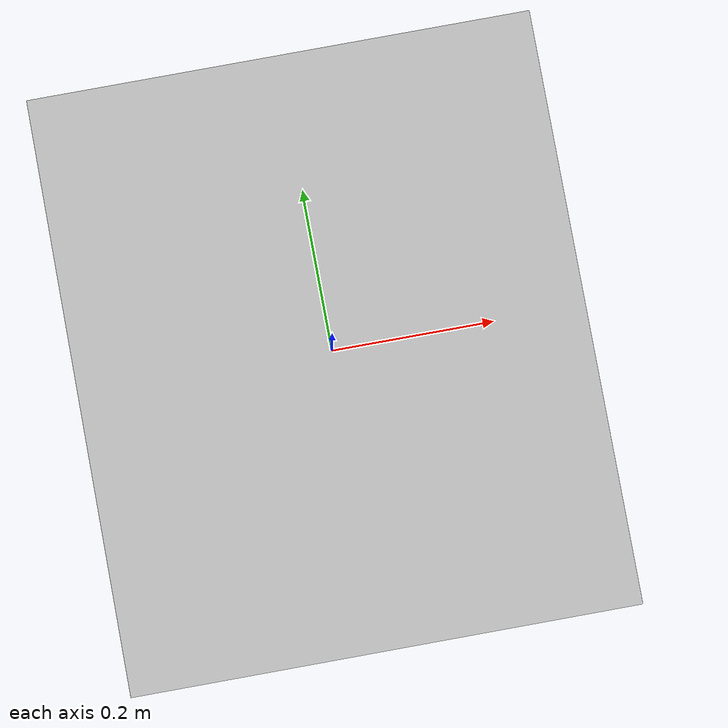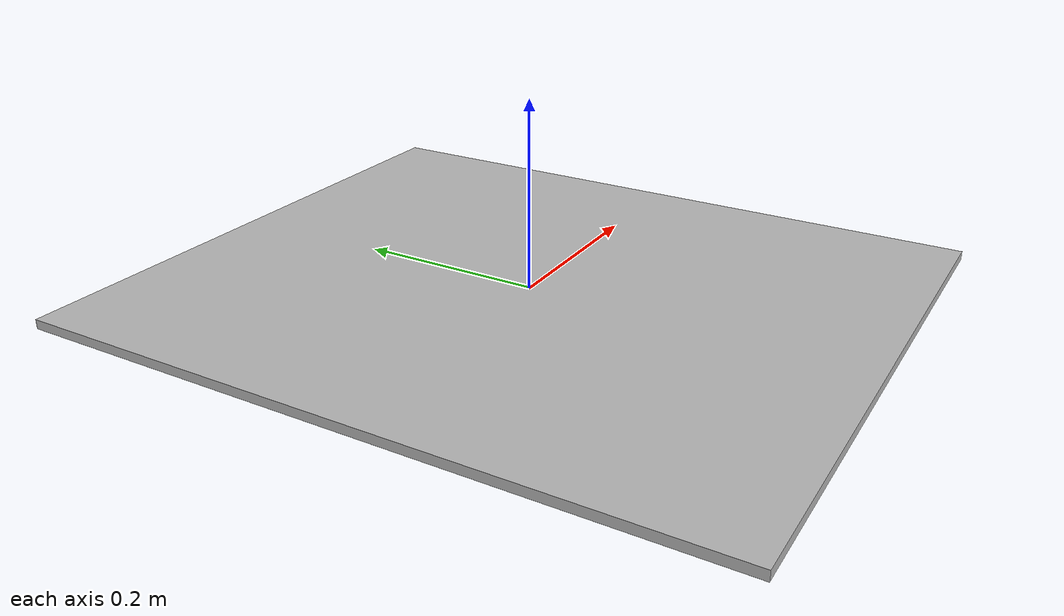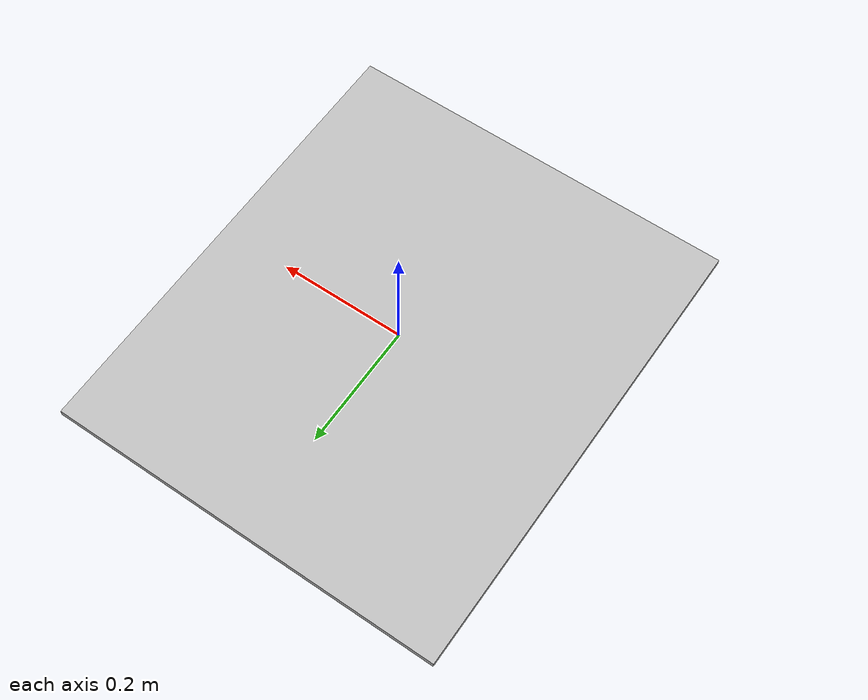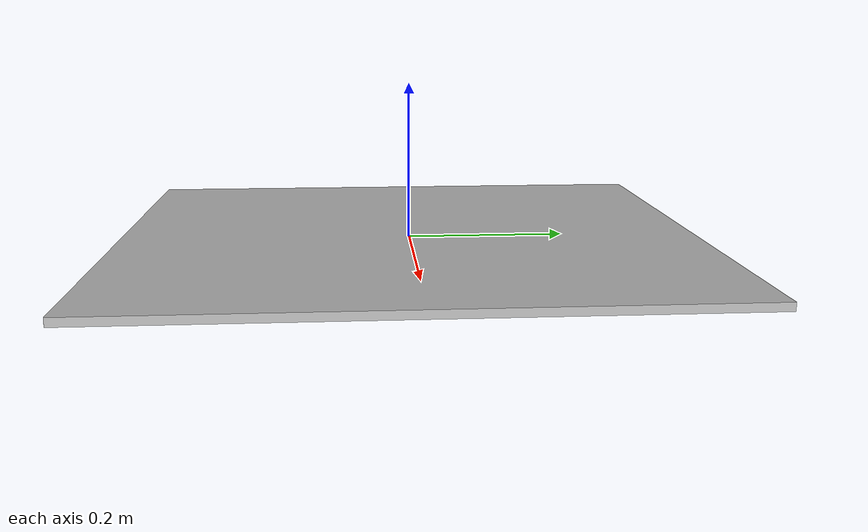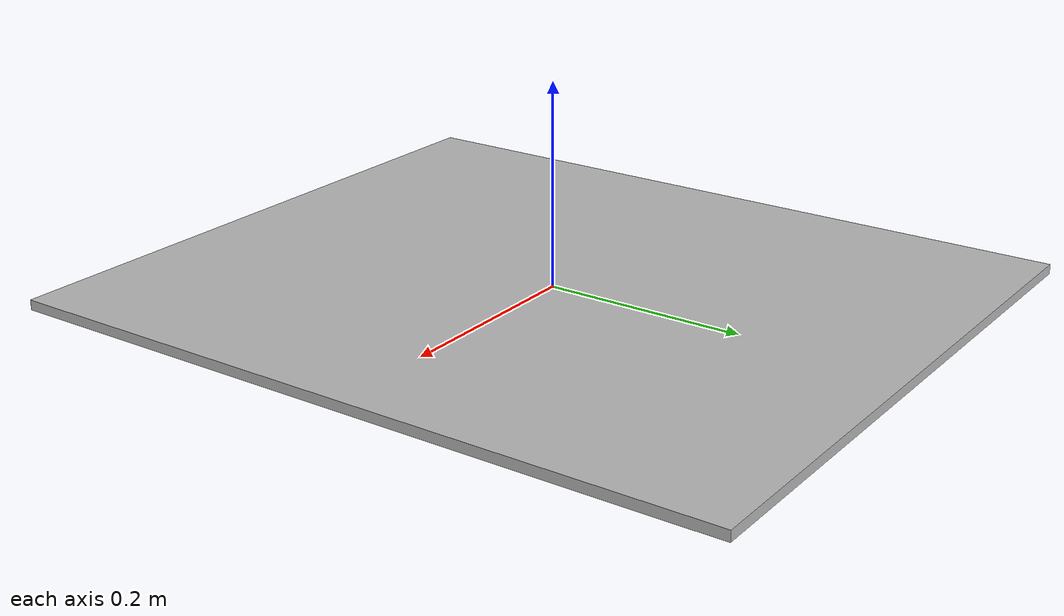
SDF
<?xml version="1.0" ?>
<sdf version="1.4">
  <model name="electric_panel">
    <static>true</static>
    <link name="link">
      <pose>0 0 0 0 0 0</pose>
      <visual name="visual">
        <cast_shadows>false</cast_shadows>
        <geometry>
          <box>
            <size>0.626 0.738 0.01</size>
          </box>
        </geometry>
        <material>
          <script>
            <uri>model://electric_panel/materials/scripts</uri>
            <uri>model://electric_panel/materials/textures</uri>
            <name>electric_panel</name>
          </script>
        </material>
      </visual>
    </link>
  </model>
</sdf>
